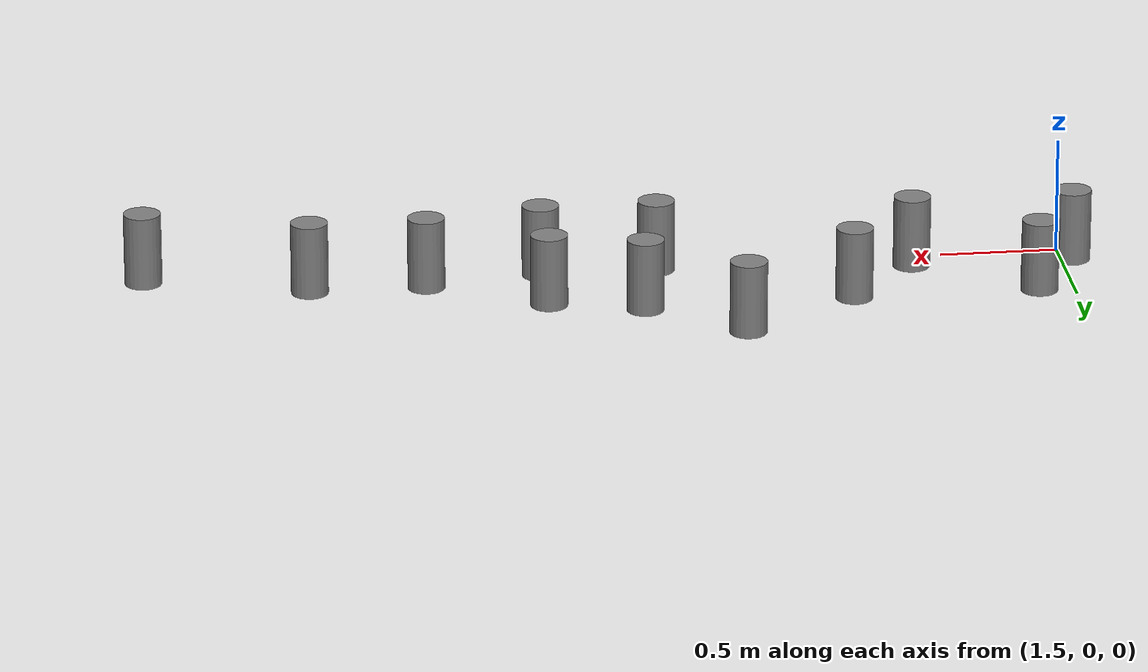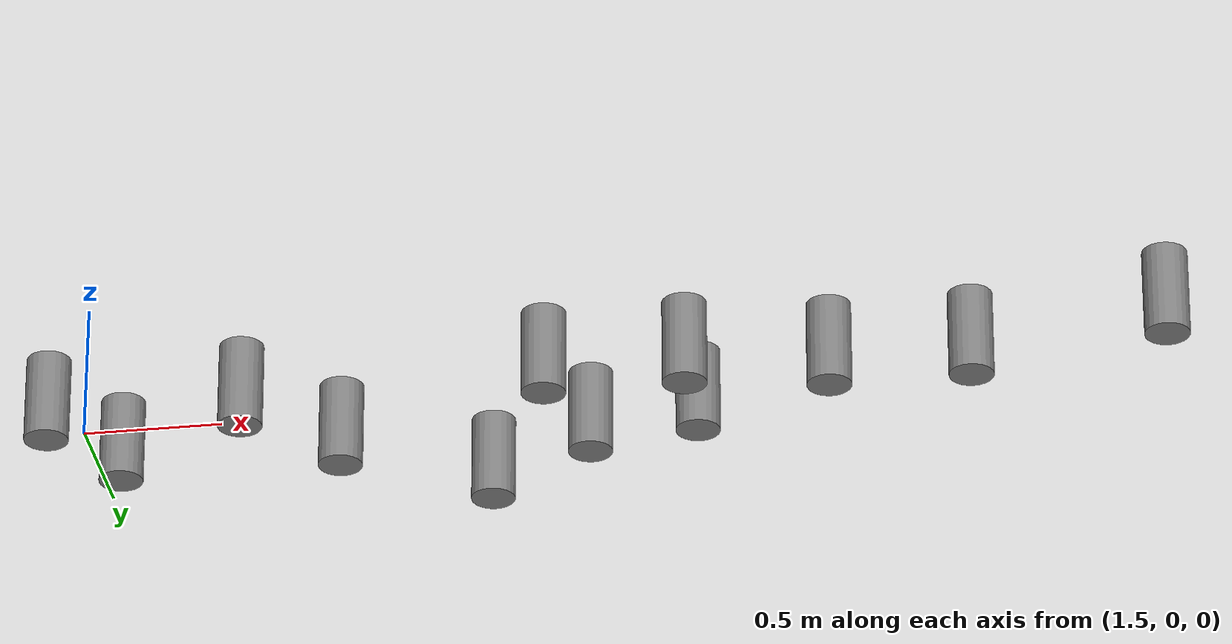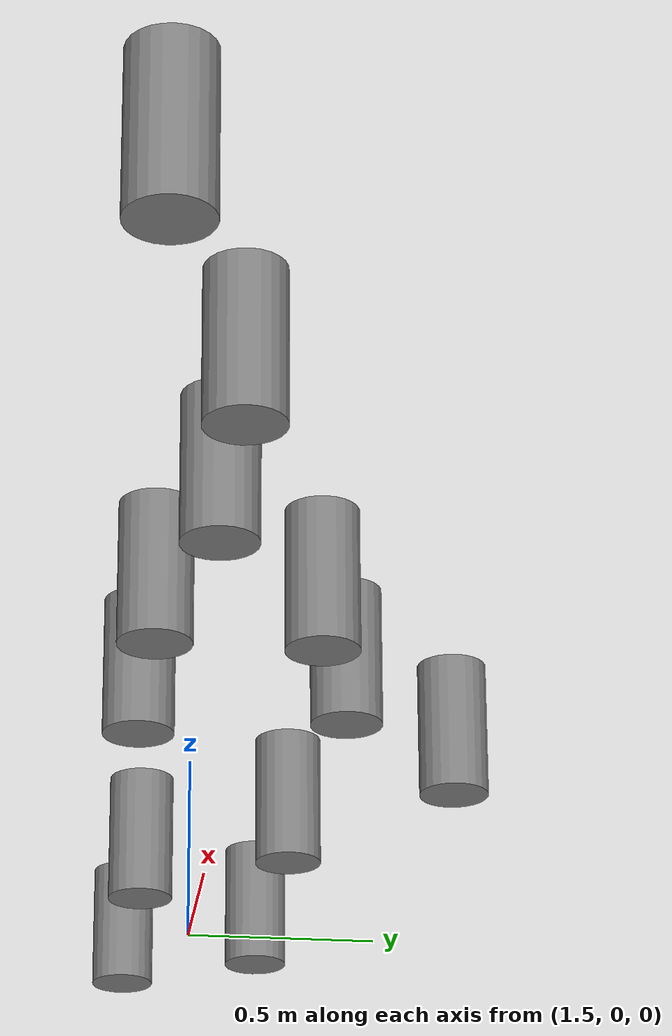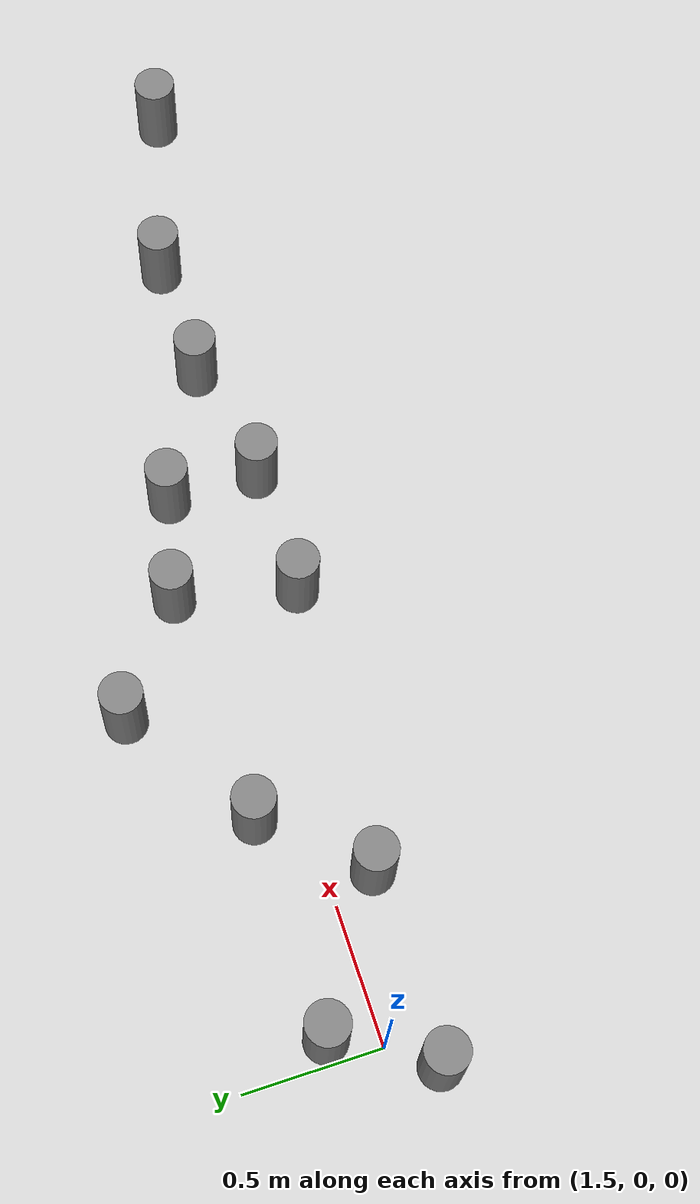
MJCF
<mujoco>
  <default>
    <default class="obstacle">
      <geom type="cylinder" friction="0.05" size="0.08 0.16" rgba="0.5 0.5 0.5 1"  pos="0 0 0.05" zaxis="0 0 1"/>
    </default>
  </default>

  <worldbody>
    <body childclass="obstacle">
      <!-- Initial obstacles -->
      <geom pos="1.6 0.17 0.05"/>
      <geom pos="1.4 -0.17 0.05"/>
      <geom pos="2.4 0.17 0.05"/>
      <geom pos="2.1 -0.17 0.05"/>

      <!-- More obstacles -->
      <geom pos="2.9 0.5 0.05"/>
      <geom pos="3.3 0.2 0.05"/>
      <geom pos="3.2 -0.25 0.05"/>
      <geom pos="3.7 -0.25 0.05"/>
      <geom pos="3.7 0.1 0.05"/>
      <geom pos="4.2 -0.16 0.05"/>
      <geom pos="4.7 -0.16 0.05"/>
      <geom pos="5.4 -0.35 0.05"/>
    </body>
  </worldbody>

</mujoco>
